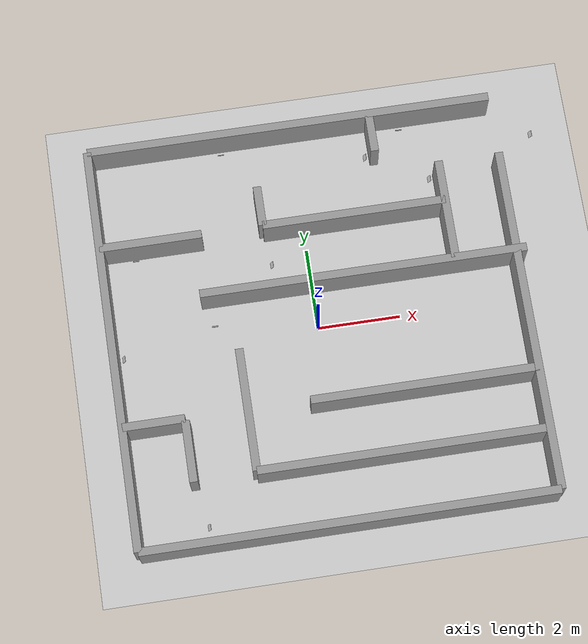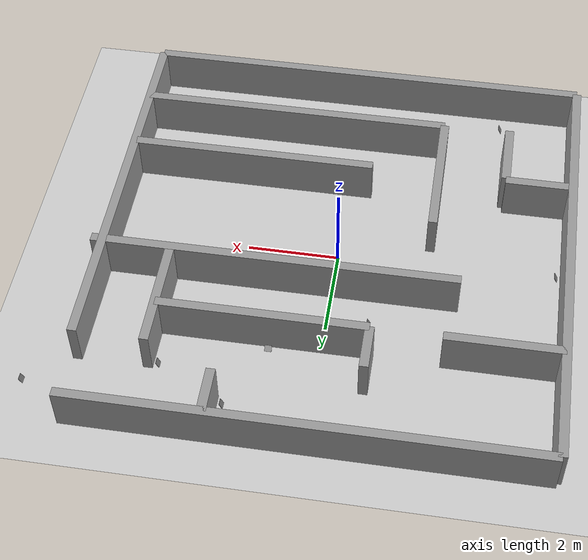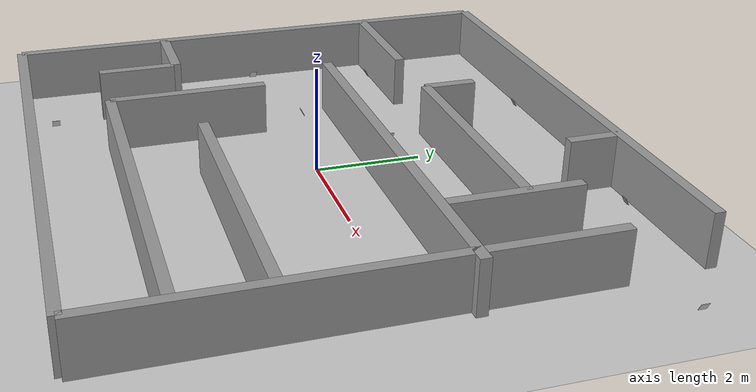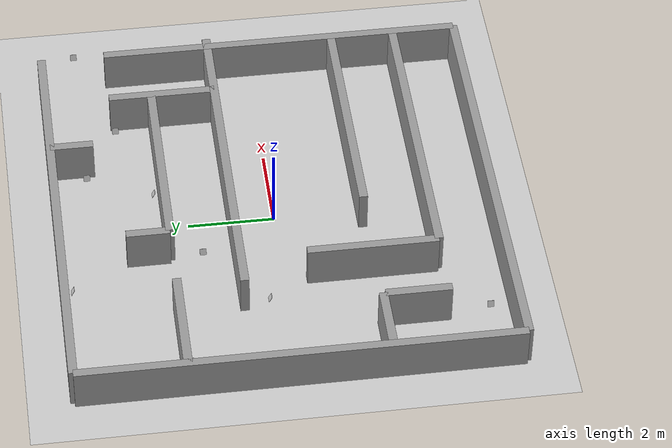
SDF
<?xml version="1.0" ?>
<sdf version="1.4">
  <world name="maze">
    <physics type="ode">
      <gravity>0 0 -9.81</gravity>
      <ode>
        <solver>
          <type>quick</type>
          <iters>50</iters>
          <sor>1.4</sor>
        </solver>
        <constraints>
          <cfm>0.0</cfm>
          <erp>0.2</erp>
          <contact_max_correcting_vel>100.0</contact_max_correcting_vel>
          <contact_surface_layer>0.0</contact_surface_layer>
        </constraints>
      </ode>
      <real_time_update_rate>1000</real_time_update_rate>
      <max_step_size>0.001</max_step_size>
    </physics>
    <scene>
      <ambient>0.4 0.4 0.4 1</ambient>
      <background>0.7 0.7 0.7 1</background>
      <shadows>true</shadows>
    </scene>
    <!-- Focus camera on the maze -->
    <gui fullscreen='0'>
      <camera name='user_camera'>
        <pose>0 0 35 0 1.570796327 1.570796327</pose>
        <view_controller>orbit</view_controller>
      </camera>
    </gui>
    <!-- Light Source -->
    <light type="directional" name="sun">
      <cast_shadows>true</cast_shadows>
      <pose>0 0 100 0 0 0</pose>
      <diffuse>0.9 0.9 0.9 1</diffuse>
      <specular>0.1 0.1 0.1 1</specular>
      <attenuation>
        <range>1000</range>
        <constant>0.9</constant>
        <linear>0.01</linear>
        <quadratic>0.001</quadratic>
      </attenuation>
      <direction>-0.2 0.0 -1.0</direction>
    </light>
    <!-- Point Light Source -->
    <light type="point" name="light_bulb">
      <cast_shadows>true</cast_shadows>
      <pose>0 0 10 0 0 0</pose>
      <diffuse>0.5 0.5 0.5 1</diffuse>
      <specular>0.0 0.0 0.0 1</specular>
      <attenuation>
        <range>80</range>
        <constant>0.9</constant>
        <linear>0.01</linear>
        <quadratic>0.001</quadratic>
      </attenuation>
    </light>
    <!-- A global light source -->
    <include>
      <uri>model://sun</uri>
    </include>
    <!-- A ground plane -->
    <include>
      <uri>model://ground_plane</uri>
    </include>
    <!-- The maze -->
    <include>
      <uri>model://maze</uri>
      <pose>0 0 0 0 0 0</pose>
    </include>
    <include>
      <uri>model://april_tag/Apriltag36_11_00000</uri>
      <pose>0 0 0 0 0 0</pose>
    </include>
    <include>
      <uri>model://april_tag/Apriltag36_11_00001</uri>
      <pose>0 0 0 0 0 0</pose>
    </include>
    <include>
      <uri>model://april_tag/Apriltag36_11_00002</uri>
      <pose>0 0 0 0 0 0</pose>
    </include>
  </world>
</sdf>

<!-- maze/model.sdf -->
<sdf version='1.4'>
  <model name='maze'>
    <static>1</static>
    <link name='Wall_0'>
      <pose>-5 -5 0 0 0 1.570796327</pose>
      <collision name='Wall_0_Collision'>
        <pose>5 0 0.5 0 0 0</pose>
        <geometry>
          <box>
            <size>10 0.2 1</size>
          </box>
        </geometry>
      </collision>
      <visual name='Wall_0_Visual'>
        <pose>5 0 0.5 0 0 0</pose>
        <geometry>
          <box>
            <size>10 0.2 1</size>
          </box>
        </geometry>
        <material>
          <script>
            <uri>file://media/materials/scripts/gazebo.material</uri>
            <name>Gazebo/Grey</name>
          </script>
        </material>
      </visual>
    </link>

    <link name='Wall_1'>
      <pose>-5 -5 0 0 0 0</pose>
      <collision name='Wall_1_Collision'>
        <pose>5 0 0.5 0 0 0</pose>
        <geometry>
          <box>
            <size>10 0.2 1</size>
          </box>
        </geometry>
      </collision>
      <visual name='Wall_1_Visual'>
        <pose>5 0 0.5 0 0 0</pose>
        <geometry>
          <box>
            <size>10 0.2 1</size>
          </box>
        </geometry>
        <material>
          <script>
            <uri>file://media/materials/scripts/gazebo.material</uri>
            <name>Gazebo/Grey</name>
          </script>
        </material>
      </visual>
    </link>

    <link name='Wall_2'>
      <pose>5 -5 0 0 0 1.570796327</pose>
      <collision name='Wall_2_Collision'>
        <pose>4.25 0 0.5 0 0 0</pose>
        <geometry>
          <box>
            <size>8.5 0.2 1</size>
          </box>
        </geometry>
      </collision>
      <visual name='Wall_2_Visual'>
        <pose>4.25 0 0.5 0 0 0</pose>
        <geometry>
          <box>
            <size>8.5 0.2 1</size>
          </box>
        </geometry>
        <material>
          <script>
            <uri>file://media/materials/scripts/gazebo.material</uri>
            <name>Gazebo/Grey</name>
          </script>
        </material>
      </visual>
    </link>

    <link name='Wall_3'>
      <pose>-5 5 0 0 0 0</pose>
      <collision name='Wall_3_Collision'>
        <pose>5 0 0.5 0 0 0</pose>
        <geometry>
          <box>
            <size>10 0.2 1</size>
          </box>
        </geometry>
      </collision>
      <visual name='Wall_3_Visual'>
        <pose>5 0 0.5 0 0 0</pose>
        <geometry>
          <box>
            <size>10 0.2 1</size>
          </box>
        </geometry>
        <material>
          <script>
            <uri>file://media/materials/scripts/gazebo.material</uri>
            <name>Gazebo/Grey</name>
          </script>
        </material>
      </visual>
    </link>

    <link name='Wall_4'>
      <pose>-2 -3.5 0 0 0 0</pose>
      <collision name='Wall_4_Collision'>
        <pose>3.5 0 0.5 0 0 0</pose>
        <geometry>
          <box>
            <size>7 0.2 1</size>
          </box>
        </geometry>
      </collision>
      <visual name='Wall_4_Visual'>
        <pose>3.5 0 0.5 0 0 0</pose>
        <geometry>
          <box>
            <size>7 0.2 1</size>
          </box>
        </geometry>
        <material>
          <script>
            <uri>file://media/materials/scripts/gazebo.material</uri>
            <name>Gazebo/Grey</name>
          </script>
        </material>
      </visual>
    </link>

    <link name='Wall_5'>
      <pose>-3.5 -3.5 0 0 0 1.570796327</pose>
      <collision name='Wall_5_Collision'>
        <pose>0.7 0 0.5 0 0 0</pose>
        <geometry>
          <box>
            <size>1.5 0.2 1</size>
          </box>
        </geometry>
      </collision>
      <visual name='Wall_5_Visual'>
        <pose>0.7 0 0.5 0 0 0</pose>
        <geometry>
          <box>
            <size>1.5 0.2 1</size>
          </box>
        </geometry>
        <material>
          <script>
            <uri>file://media/materials/scripts/gazebo.material</uri>
            <name>Gazebo/Grey</name>
          </script>
        </material>
      </visual>
    </link>

    <link name='Wall_6'>
      <pose>-0.5 -2 0 0 0 0</pose>
      <collision name='Wall_6_Collision'>
        <pose>2.75 0 0.5 0 0 0</pose>
        <geometry>
          <box>
            <size>5.5 0.2 1</size>
          </box>
        </geometry>
      </collision>
      <visual name='Wall_6_Visual'>
        <pose>2.75 0 0.5 0 0 0</pose>
        <geometry>
          <box>
            <size>5.5 0.2 1</size>
          </box>
        </geometry>
        <material>
          <script>
            <uri>file://media/materials/scripts/gazebo.material</uri>
            <name>Gazebo/Grey</name>
          </script>
        </material>
      </visual>
    </link>

    <link name='Wall_7'>
      <pose>-2 -3.5 0 0 0 1.570796327</pose>
      <collision name='Wall_7_Collision'>
        <pose>1.5 0 0.5 0 0 0</pose>
        <geometry>
          <box>
            <size>3 0.2 1</size>
          </box>
        </geometry>
      </collision>
      <visual name='Wall_7_Visual'>
        <pose>1.5 0 0.5 0 0 0</pose>
        <geometry>
          <box>
            <size>3 0.2 1</size>
          </box>
        </geometry>
        <material>
          <script>
            <uri>file://media/materials/scripts/gazebo.material</uri>
            <name>Gazebo/Grey</name>
          </script>
        </material>
      </visual>
    </link>

    <link name='Wall_8'>
      <pose>-3 1 0 0 0 0</pose>
      <collision name='Wall_8_Collision'>
        <pose>4.25 0 0.5 0 0 0</pose>
        <geometry>
          <box>
            <size>8 0.2 1</size>
          </box>
        </geometry>
      </collision>
      <visual name='Wall_8_Visual'>
        <pose>4.25 0 0.5 0 0 0</pose>
        <geometry>
          <box>
            <size>8 0.2 1</size>
          </box>
        </geometry>
        <material>
          <script>
            <uri>file://media/materials/scripts/gazebo.material</uri>
            <name>Gazebo/Grey</name>
          </script>
        </material>
      </visual>
    </link>

    <link name='Wall_9'>
      <pose>-1 2.5 0 0 0 0</pose>
      <collision name='Wall_9_Collision'>
        <pose>2.25 0 0.5 0 0 0</pose>
        <geometry>
          <box>
            <size>4.5 0.2 1</size>
          </box>
        </geometry>
      </collision>
      <visual name='Wall_9_Visual'>
        <pose>2.25 0 0.5 0 0 0</pose>
        <geometry>
          <box>
            <size>4.5 0.2 1</size>
          </box>
        </geometry>
        <material>
          <script>
            <uri>file://media/materials/scripts/gazebo.material</uri>
            <name>Gazebo/Grey</name>
          </script>
        </material>
      </visual>
    </link>

    <link name='Wall_10'>
      <pose>-1 2.5 0 0 0 1.570796327</pose>
      <collision name='Wall_10_Collision'>
        <pose>0.5 0 0.5 0 0 0</pose>
        <geometry>
          <box>
            <size>1 0.2 1</size>
          </box>
        </geometry>
      </collision>
      <visual name='Wall_10_Visual'>
        <pose>0.5 0 0.5 0 0 0</pose>
        <geometry>
          <box>
            <size>1 0.2 1</size>
          </box>
        </geometry>
        <material>
          <script>
            <uri>file://media/materials/scripts/gazebo.material</uri>
            <name>Gazebo/Grey</name>
          </script>
        </material>
      </visual>
    </link>

    <link name='Wall_11'>
      <pose>2 4 0 0 0 1.570796327</pose>
      <collision name='Wall_11_Collision'>
        <pose>0.5 0 0.5 0 0 0</pose>
        <geometry>
          <box>
            <size>1 0.2 1</size>
          </box>
        </geometry>
      </collision>
      <visual name='Wall_11_Visual'>
        <pose>0.5 0 0.5 0 0 0</pose>
        <geometry>
          <box>
            <size>1 0.2 1</size>
          </box>
        </geometry>
        <material>
          <script>
            <uri>file://media/materials/scripts/gazebo.material</uri>
            <name>Gazebo/Grey</name>
          </script>
        </material>
      </visual>
    </link>

    <link name='Wall_12'>
      <pose>3.5 1 0 0 0 1.570796327</pose>
      <collision name='Wall_12_Collision'>
        <pose>1.25 0 0.5 0 0 0</pose>
        <geometry>
          <box>
            <size>2.5 0.2 1</size>
          </box>
        </geometry>
      </collision>
      <visual name='Wall_12_Visual'>
        <pose>1.25 0 0.5 0 0 0</pose>
        <geometry>
          <box>
            <size>2.5 0.2 1</size>
          </box>
        </geometry>
        <material>
          <script>
            <uri>file://media/materials/scripts/gazebo.material</uri>
            <name>Gazebo/Grey</name>
          </script>
        </material>
      </visual>
    </link>

    <link name='Wall_13'>
      <pose>-5 2.5 0 0 0 0</pose>
      <collision name='Wall_13_Collision'>
        <pose>1.25 0 0.5 0 0 0</pose>
        <geometry>
          <box>
            <size>2.5 0.2 1</size>
          </box>
        </geometry>
      </collision>
      <visual name='Wall_13_Visual'>
        <pose>1.25 0 0.5 0 0 0</pose>
        <geometry>
          <box>
            <size>2.5 0.2 1</size>
          </box>
        </geometry>
        <material>
          <script>
            <uri>file://media/materials/scripts/gazebo.material</uri>
            <name>Gazebo/Grey</name>
          </script>
        </material>
      </visual>
    </link>

    <link name='Wall_14'>
      <pose>-5 -2 0 0 0 0</pose>
      <collision name='Wall_14_Collision'>
        <pose>0.75 0 0.5 0 0 0</pose>
        <geometry>
          <box>
            <size>1.5 0.2 1</size>
          </box>
        </geometry>
      </collision>
      <visual name='Wall_14_Visual'>
        <pose>0.75 0 0.5 0 0 0</pose>
        <geometry>
          <box>
            <size>1.5 0.2 1</size>
          </box>
        </geometry>
        <material>
          <script>
            <uri>file://media/materials/scripts/gazebo.material</uri>
            <name>Gazebo/Grey</name>
          </script>
        </material>
      </visual>
    </link>
  </model>
</sdf>

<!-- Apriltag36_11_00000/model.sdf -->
<sdf version='1.6'>
  <model name='april_tag_sx'>
    <link name='tag1_sx'>
    <pose frame=''>-0.90 1.75 0.075 0 90 0</pose>
      <visual name='tag1_sx_Visual'>
        <geometry>
          <box>
          <size>0.15 0.15 0.01</size>
          </box>
        </geometry>
           <material>
          <script>
            <uri>model://april_tag/Apriltag36_11_00000/materials/scripts</uri>
            <uri>model://april_tag/Apriltag36_11_00000/materials/textures</uri>
            <name>Apriltag36_11_00000</name>
          </script>
        </material>
      </visual>
     </link>
     <link name='tag2_sx'>
    <pose frame=''>1.1 2.7 0.075 90 0 0</pose>
      <visual name='tag2_sx_Visual'>
        <geometry>
          <box>
          <size>0.15 0.15 0.01</size>
          </box>
        </geometry>
           <material>
          <script>
            <uri>model://april_tag/Apriltag36_11_00000/materials/scripts</uri>
            <uri>model://april_tag/Apriltag36_11_00000/materials/textures</uri>
            <name>Apriltag36_11_00000</name>
          </script>
        </material>
      </visual>
     </link>
     <link name='tag3_sx'>
    <pose frame=''>3.3 3.4 0.075 0 90 0</pose>
      <visual name='tag3_sx_Visual'>
        <geometry>
          <box>
          <size>0.15 0.15 0.01</size>
          </box>
        </geometry>
           <material>
          <script>
            <uri>model://april_tag/Apriltag36_11_00000/materials/scripts</uri>
            <uri>model://april_tag/Apriltag36_11_00000/materials/textures</uri>
            <name>Apriltag36_11_00000</name>
          </script>
        </material>
      </visual>
     </link>
     <link name='tag4_sx'>
    <pose frame=''>-2.50 0.4 0.075 90 0 0</pose>
      <visual name='tag4_sx_Visual'>
        <geometry>
          <box>
          <size>0.15 0.15 0.01</size>
          </box>
        </geometry>
           <material>
          <script>
            <uri>model://april_tag/Apriltag36_11_00000/materials/scripts</uri>
            <uri>model://april_tag/Apriltag36_11_00000/materials/textures</uri>
            <name>Apriltag36_11_00000</name>
          </script>
        </material>
      </visual>
     </link>
    <static>1</static>
  </model>
</sdf>

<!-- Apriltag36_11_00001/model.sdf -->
<sdf version='1.6'>
  <model name='april_tag_dx'>
    <link name='tag1_dx'>
    <pose frame=''>-3.3 -4.5 0.075 0 90 0</pose>
      <visual name='tag1_dx_Visual'>
        <geometry>
          <box>
          <size>0.15 0.15 0.01</size>
          </box>
        </geometry>
           <material>
          <script>
            <uri>model://april_tag/Apriltag36_11_00001/materials/scripts</uri>
            <uri>model://april_tag/Apriltag36_11_00001/materials/textures</uri>
            <name>Apriltag36_11_00001</name>
          </script>
        </material>
      </visual>
     </link>
     <link name='tag2_dx'>
    <pose frame=''>-4.2 2.35 0.075 90 0 0</pose>
      <visual name='tag2_dx_Visual'>
        <geometry>
          <box>
          <size>0.15 0.15 0.01</size>
          </box>
        </geometry>
           <material>
          <script>
            <uri>model://april_tag/Apriltag36_11_00001/materials/scripts</uri>
            <uri>model://april_tag/Apriltag36_11_00001/materials/textures</uri>
            <name>Apriltag36_11_00001</name>
          </script>
        </material>
      </visual>
     </link>
     <link name='tag3_dx'>
    <pose frame=''>-1.75 4.8 0.075 90 0 0</pose>
      <visual name='tag3_dx_Visual'>
        <geometry>
          <box>
          <size>0.15 0.15 0.01</size>
          </box>
        </geometry>
           <material>
          <script>
            <uri>model://april_tag/Apriltag36_11_00001/materials/scripts</uri>
            <uri>model://april_tag/Apriltag36_11_00001/materials/textures</uri>
            <name>Apriltag36_11_00001</name>
          </script>
        </material>
      </visual>
     </link>
     <link name='tag4_dx'>
    <pose frame=''>1.8 4.2 0.075 0 90 0</pose>
      <visual name='tag4_dx_Visual'>
        <geometry>
          <box>
          <size>0.15 0.15 0.01</size>
          </box>
        </geometry>
           <material>
          <script>
            <uri>model://april_tag/Apriltag36_11_00001/materials/scripts</uri>
            <uri>model://april_tag/Apriltag36_11_00001/materials/textures</uri>
            <name>Apriltag36_11_00001</name>
          </script>
        </material>
      </visual>
     </link>
     <link name='tag5_dx'>
    <pose frame=''>2.75 4.8 0.075 90 0 0</pose>
      <visual name='tag5_dx_Visual'>
        <geometry>
          <box>
          <size>0.15 0.15 0.01</size>
          </box>
        </geometry>
           <material>
          <script>
            <uri>model://april_tag/Apriltag36_11_00001/materials/scripts</uri>
            <uri>model://april_tag/Apriltag36_11_00001/materials/textures</uri>
            <name>Apriltag36_11_00001</name>
          </script>
        </material>
      </visual>
     </link>
     <link name='tag6_dx'>
    <pose frame=''>-4.8 -0.1 0.075 0 90 0</pose>
      <visual name='tag6_dx_Visual'>
        <geometry>
          <box>
          <size>0.15 0.15 0.01</size>
          </box>
        </geometry>
           <material>
          <script>
            <uri>model://april_tag/Apriltag36_11_00001/materials/scripts</uri>
            <uri>model://april_tag/Apriltag36_11_00001/materials/textures</uri>
            <name>Apriltag36_11_00001</name>
          </script>
        </material>
      </visual>
     </link>
    <static>1</static>
  </model>
</sdf>

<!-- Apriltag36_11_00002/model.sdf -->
<sdf version='1.6'>
  <model name='april_tag_final'>
    <link name='tag_final'>
    <pose frame=''>6 4.2 0.075 0 90 0</pose>
      <visual name='tag_final_visual'>
        <geometry>
          <box>
          <size>0.15 0.15 0.01</size>
          </box>
        </geometry>
           <material>
          <script>
            <uri>model://april_tag/Apriltag36_11_00002/materials/scripts</uri>
            <uri>model://april_tag/Apriltag36_11_00002/materials/textures</uri>
            <name>Apriltag36_11_00002</name>
          </script>
        </material>
      </visual>
     </link>
    <static>1</static>
  </model>
</sdf>
